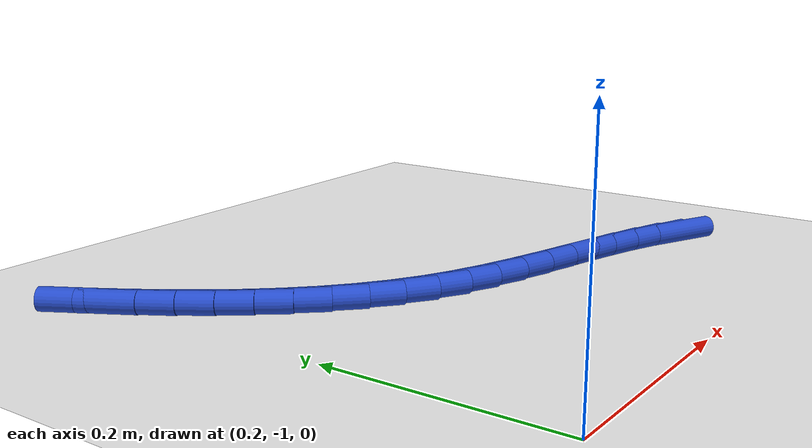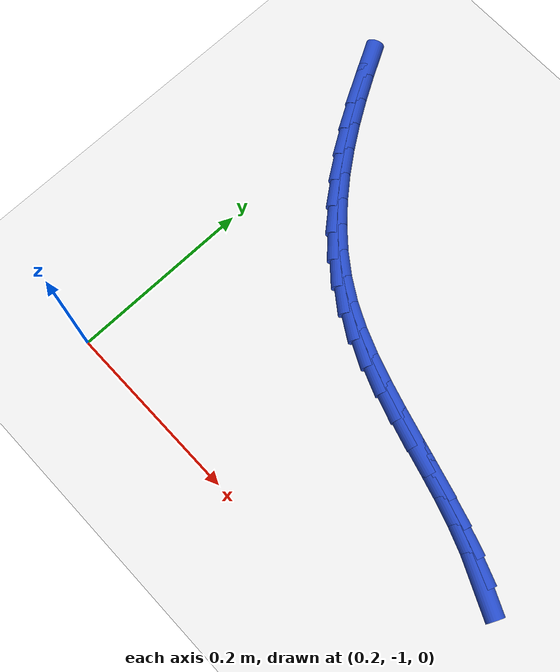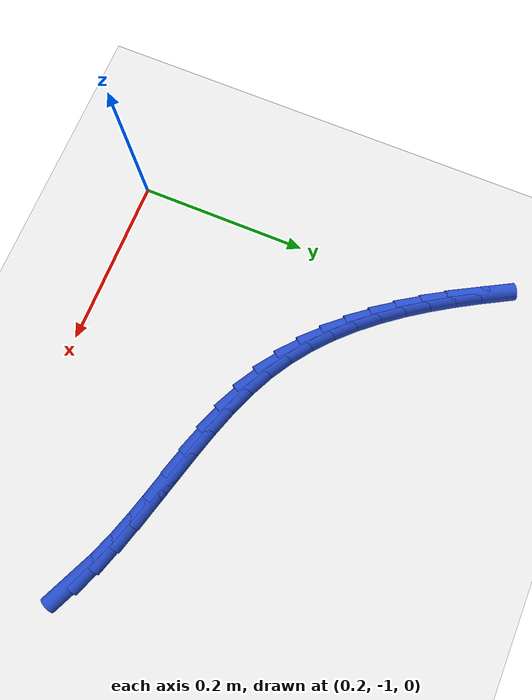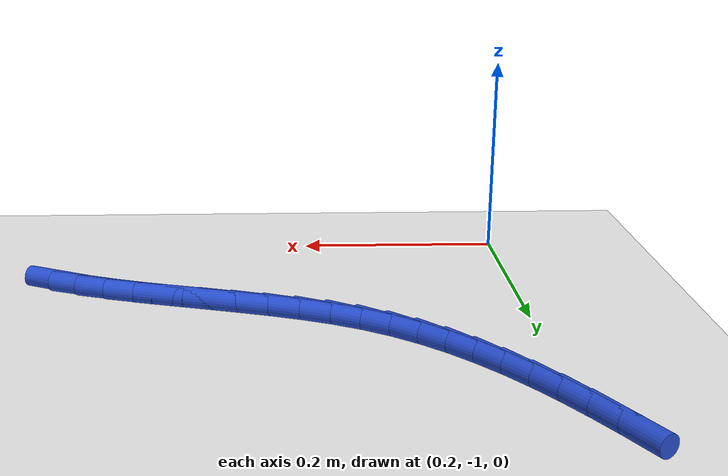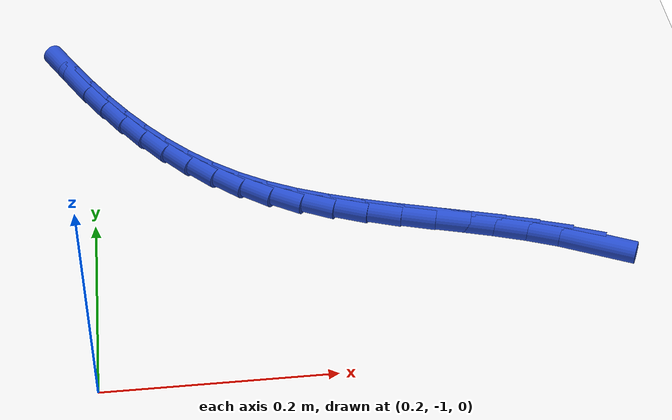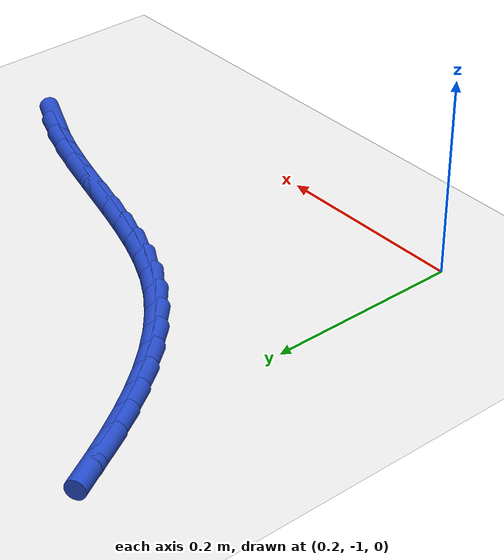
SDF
<sdf version="1.6">
 <world name="default">
  <model name="ground_plane">
   <static>1</static>
   <link name="link">
    <collision name="collision">
     <geometry><plane><normal>0 0 1</normal><size>100 100</size></plane></geometry>
     <surface><friction><ode><mu>100</mu><mu2>50</mu2></ode></friction></surface>
    </collision>
    <visual name="visual">
     <cast_shadows>0</cast_shadows>
     <geometry><plane><normal>0 0 1</normal><size>100 100</size></plane></geometry>
     <material>
      <script><uri>file://media/materials/scripts/gazebo.material</uri><name>Gazebo/WhiteGlow</name></script>
     </material>
    </visual>
   </link>
  </model>
  <model name="line">
   <link name="link_200">
    <pose>0.6397510369766616 -0.8785438750444734 0.01 0 1.57 -0.4347213991607902</pose>
    <collision name="collision">
     <geometry><cylinder><radius>0.01</radius><length>0.08</length></cylinder></geometry>
    </collision>
    <visual name="visual">
     <material>
      <script><name>Gazebo/Blue</name><uri>file://media/materials/scripts/gazebo.material</uri></script>
     </material>
     <geometry><cylinder><radius>0.01</radius><length>0.08</length></cylinder></geometry>
    </visual>
   </link>
   <link name="link_201">
    <pose>0.6138087772537272 -0.8664976403631172 0.01 0 1.57 -0.3633996445146176</pose>
    <collision name="collision">
     <geometry><cylinder><radius>0.01</radius><length>0.08</length></cylinder></geometry>
    </collision>
    <visual name="visual">
     <material>
      <script><name>Gazebo/Blue</name><uri>file://media/materials/scripts/gazebo.material</uri></script>
     </material>
     <geometry><cylinder><radius>0.01</radius><length>0.08</length></cylinder></geometry>
    </visual>
   </link>
   <link name="link_202">
    <pose>0.5863619443892258 -0.8560599078214807 0.01 0 1.57 -0.3130276261750516</pose>
    <collision name="collision">
     <geometry><cylinder><radius>0.01</radius><length>0.08</length></cylinder></geometry>
    </collision>
    <visual name="visual">
     <material>
      <script><name>Gazebo/Blue</name><uri>file://media/materials/scripts/gazebo.material</uri></script>
     </material>
     <geometry><cylinder><radius>0.01</radius><length>0.08</length></cylinder></geometry>
    </visual>
   </link>
   <link name="link_203">
    <pose>0.5577673661066123 -0.8468047279467856 0.01 0 1.57 -0.28152847102057466</pose>
    <collision name="collision">
     <geometry><cylinder><radius>0.01</radius><length>0.08</length></cylinder></geometry>
    </collision>
    <visual name="visual">
     <material>
      <script><name>Gazebo/Blue</name><uri>file://media/materials/scripts/gazebo.material</uri></script>
     </material>
     <geometry><cylinder><radius>0.01</radius><length>0.08</length></cylinder></geometry>
    </visual>
   </link>
   <link name="link_204">
    <pose>0.5283818701293415 -0.838306151266254 0.01 0 1.57 -0.26735381760005705</pose>
    <collision name="collision">
     <geometry><cylinder><radius>0.01</radius><length>0.08</length></cylinder></geometry>
    </collision>
    <visual name="visual">
     <material>
      <script><name>Gazebo/Blue</name><uri>file://media/materials/scripts/gazebo.material</uri></script>
     </material>
     <geometry><cylinder><radius>0.01</radius><length>0.08</length></cylinder></geometry>
    </visual>
   </link>
   <link name="link_205">
    <pose>0.49856228418086834 -0.830138228307107 0.01 0 1.57 -0.2696589191583285</pose>
    <collision name="collision">
     <geometry><cylinder><radius>0.01</radius><length>0.08</length></cylinder></geometry>
    </collision>
    <visual name="visual">
     <material>
      <script><name>Gazebo/Blue</name><uri>file://media/materials/scripts/gazebo.material</uri></script>
     </material>
     <geometry><cylinder><radius>0.01</radius><length>0.08</length></cylinder></geometry>
    </visual>
   </link>
   <link name="link_206">
    <pose>0.46866543598464755 -0.8218750095965671 0.01 0 1.57 -0.2883339304101865</pose>
    <collision name="collision">
     <geometry><cylinder><radius>0.01</radius><length>0.08</length></cylinder></geometry>
    </collision>
    <visual name="visual">
     <material>
      <script><name>Gazebo/Blue</name><uri>file://media/materials/scripts/gazebo.material</uri></script>
     </material>
     <geometry><cylinder><radius>0.01</radius><length>0.08</length></cylinder></geometry>
    </visual>
   </link>
   <link name="link_207">
    <pose>0.439048153264134 -0.8130905456618556 0.01 0 1.57 -0.3239650619073759</pose>
    <collision name="collision">
     <geometry><cylinder><radius>0.01</radius><length>0.08</length></cylinder></geometry>
    </collision>
    <visual name="visual">
     <material>
      <script><name>Gazebo/Blue</name><uri>file://media/materials/scripts/gazebo.material</uri></script>
     </material>
     <geometry><cylinder><radius>0.01</radius><length>0.08</length></cylinder></geometry>
    </visual>
   </link>
   <link name="link_208">
    <pose>0.4100672637427817 -0.8033588870301938 0.01 0 1.57 -0.3777229806592132</pose>
    <collision name="collision">
     <geometry><cylinder><radius>0.01</radius><length>0.08</length></cylinder></geometry>
    </collision>
    <visual name="visual">
     <material>
      <script><name>Gazebo/Blue</name><uri>file://media/materials/scripts/gazebo.material</uri></script>
     </material>
     <geometry><cylinder><radius>0.01</radius><length>0.08</length></cylinder></geometry>
    </visual>
   </link>
   <link name="link_209">
    <pose>0.3820795951440471 -0.7922540842288042 0.01 0 1.57 -0.45110916223715924</pose>
    <collision name="collision">
     <geometry><cylinder><radius>0.01</radius><length>0.08</length></cylinder></geometry>
    </collision>
    <visual name="visual">
     <material>
      <script><name>Gazebo/Blue</name><uri>file://media/materials/scripts/gazebo.material</uri></script>
     </material>
     <geometry><cylinder><radius>0.01</radius><length>0.08</length></cylinder></geometry>
    </visual>
   </link>
   <link name="link_210">
    <pose>0.35544197519138415 -0.7793501877849083 0.01 0 1.57 -0.5421805974933543</pose>
    <collision name="collision">
     <geometry><cylinder><radius>0.01</radius><length>0.08</length></cylinder></geometry>
    </collision>
    <visual name="visual">
     <material>
      <script><name>Gazebo/Blue</name><uri>file://media/materials/scripts/gazebo.material</uri></script>
     </material>
     <geometry><cylinder><radius>0.01</radius><length>0.08</length></cylinder></geometry>
    </visual>
   </link>
   <link name="link_211">
    <pose>0.33045318616593133 -0.764297000544998 0.01 0 1.57 -0.6331347624229228</pose>
    <collision name="collision">
     <geometry><cylinder><radius>0.01</radius><length>0.08</length></cylinder></geometry>
    </collision>
    <visual name="visual">
     <material>
      <script><name>Gazebo/Blue</name><uri>file://media/materials/scripts/gazebo.material</uri></script>
     </material>
     <geometry><cylinder><radius>0.01</radius><length>0.08</length></cylinder></geometry>
    </visual>
   </link>
   <link name="link_212">
    <pose>0.3070970807654217 -0.7471553248311102 0.01 0 1.57 -0.7166348459840188</pose>
    <collision name="collision">
     <geometry><cylinder><radius>0.01</radius><length>0.08</length></cylinder></geometry>
    </collision>
    <visual name="visual">
     <material>
      <script><name>Gazebo/Blue</name><uri>file://media/materials/scripts/gazebo.material</uri></script>
     </material>
     <geometry><cylinder><radius>0.01</radius><length>0.08</length></cylinder></geometry>
    </visual>
   </link>
   <link name="link_213">
    <pose>0.28525120809019205 -0.7281246946852611 0.01 0 1.57 -0.7917550917360892</pose>
    <collision name="collision">
     <geometry><cylinder><radius>0.01</radius><length>0.08</length></cylinder></geometry>
    </collision>
    <visual name="visual">
     <material>
      <script><name>Gazebo/Blue</name><uri>file://media/materials/scripts/gazebo.material</uri></script>
     </material>
     <geometry><cylinder><radius>0.01</radius><length>0.08</length></cylinder></geometry>
    </visual>
   </link>
   <link name="link_214">
    <pose>0.2647930348884771 -0.7074047516232409 0.01 0 1.57 -0.8581299447353159</pose>
    <collision name="collision">
     <geometry><cylinder><radius>0.01</radius><length>0.08</length></cylinder></geometry>
    </collision>
    <visual name="visual">
     <material>
      <script><name>Gazebo/Blue</name><uri>file://media/materials/scripts/gazebo.material</uri></script>
     </material>
     <geometry><cylinder><radius>0.01</radius><length>0.08</length></cylinder></geometry>
    </visual>
   </link>
   <link name="link_215">
    <pose>0.24560002790851104 -0.6851951371608397 0.01 0 1.57 -0.9158035439788526</pose>
    <collision name="collision">
     <geometry><cylinder><radius>0.01</radius><length>0.08</length></cylinder></geometry>
    </collision>
    <visual name="visual">
     <material>
      <script><name>Gazebo/Blue</name><uri>file://media/materials/scripts/gazebo.material</uri></script>
     </material>
     <geometry><cylinder><radius>0.01</radius><length>0.08</length></cylinder></geometry>
    </visual>
   </link>
   <link name="link_216">
    <pose>0.22754965389852927 -0.6616954928138483 0.01 0 1.57 -0.9650755925670043</pose>
    <collision name="collision">
     <geometry><cylinder><radius>0.01</radius><length>0.08</length></cylinder></geometry>
    </collision>
    <visual name="visual">
     <material>
      <script><name>Gazebo/Blue</name><uri>file://media/materials/scripts/gazebo.material</uri></script>
     </material>
     <geometry><cylinder><radius>0.01</radius><length>0.08</length></cylinder></geometry>
    </visual>
   </link>
   <link name="link_217">
    <pose>0.2105193796067661 -0.6371054600980572 0.01 0 1.57 -1.0063703364485561</pose>
    <collision name="collision">
     <geometry><cylinder><radius>0.01</radius><length>0.08</length></cylinder></geometry>
    </collision>
    <visual name="visual">
     <material>
      <script><name>Gazebo/Blue</name><uri>file://media/materials/scripts/gazebo.material</uri></script>
     </material>
     <geometry><cylinder><radius>0.01</radius><length>0.08</length></cylinder></geometry>
    </visual>
   </link>
   <link name="link_218">
    <pose>0.1943866717814561 -0.6116246805292562 0.01 0 1.57 -1.0401388956742428</pose>
    <collision name="collision">
     <geometry><cylinder><radius>0.01</radius><length>0.08</length></cylinder></geometry>
    </collision>
    <visual name="visual">
     <material>
      <script><name>Gazebo/Blue</name><uri>file://media/materials/scripts/gazebo.material</uri></script>
     </material>
     <geometry><cylinder><radius>0.01</radius><length>0.08</length></cylinder></geometry>
    </visual>
   </link>
   <link name="link_219">
    <pose>0.17902899717083384 -0.5854527956232356 0.01 0 1.57 -1.0667924988078648</pose>
    <collision name="collision">
     <geometry><cylinder><radius>0.01</radius><length>0.08</length></cylinder></geometry>
    </collision>
    <visual name="visual">
     <material>
      <script><name>Gazebo/Blue</name><uri>file://media/materials/scripts/gazebo.material</uri></script>
     </material>
     <geometry><cylinder><radius>0.01</radius><length>0.08</length></cylinder></geometry>
    </visual>
   </link>
  </model>
 </world>
</sdf>
